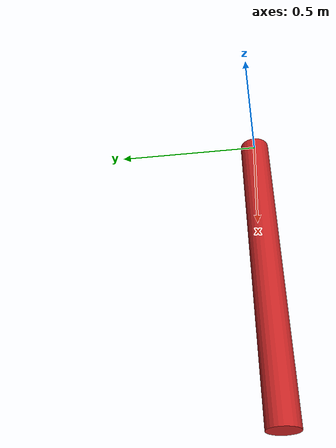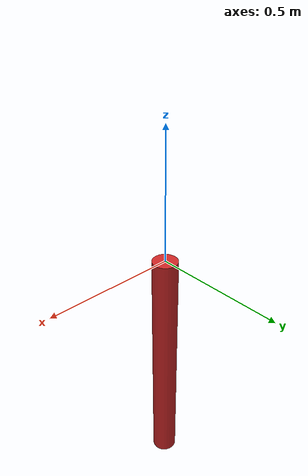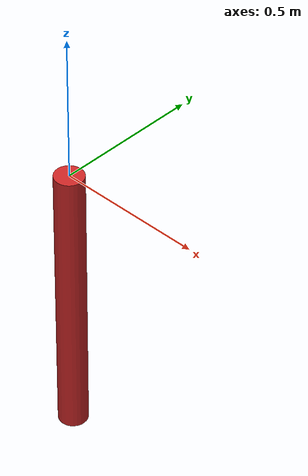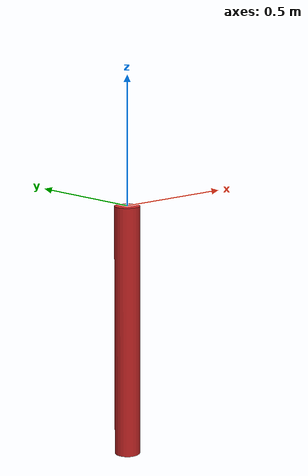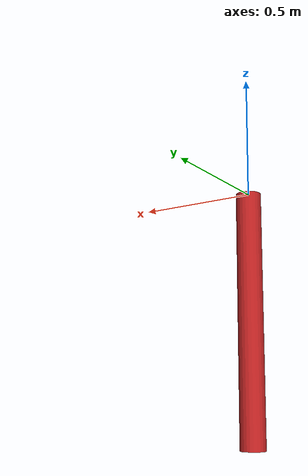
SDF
<?xml version="1.0"?>
<sdf version="1.7">
  <model name="arm">
    <link name="base">
        <inertial>
          <pose>0 0 0 0 0 0</pose>
          <mass>0.01</mass>
          <inertia>
            <ixx>0</ixx>
            <ixy>0</ixy>
            <ixz>0</ixz>
            <iyy>0</iyy>
            <iyz>0</iyz>
            <izz>0</izz>
          </inertia>
        </inertial>
    </link>
    <link name="link1">
        <inertial>
          <pose>0 0 -0.5 0 0 0</pose>
          <mass>0.6</mass>
          <inertia>
            <ixx>0.05</ixx>
            <ixy>0</ixy>
            <ixz>0</ixz>
            <iyy>0.05</iyy>
            <iyz>0</iyz>
            <izz>0.01</izz>
          </inertia>
        </inertial>
        <visual name="link_1_visual">
            <pose>0 0 -0.5 0 0 0</pose>
            <geometry>
                <cylinder>
                  <radius>0.05</radius>
                  <length>1</length>
                </cylinder>
            </geometry>
            <material>
              <diffuse>0.80078125 0.1484375 0.1484375 1.0</diffuse>
            </material>
        </visual>
        <collision name="link_1_collision">
            <pose>0 0 -0.5 0 0 0</pose>
            <geometry>
                <cylinder>
                  <radius>0.05</radius>
                  <length>1</length>
                </cylinder>
            </geometry>
        </collision>
    </link>
    <joint name="joint1" type="revolute">
        <child>link1</child>
        <parent>base</parent>
        <axis>
          <xyz expressed_in="__model__">0 1 0</xyz>
          <limit>
            <lower>-2.96706</lower>
            <upper>2.96706</upper>
            <effort>300</effort>
            <velocity>10</velocity>
          </limit>
          <dynamics>
            <damping>0.01</damping>
            <friction>0</friction>
            <spring_reference>0</spring_reference>
            <spring_stiffness>0</spring_stiffness>
          </dynamics>
        </axis>
        <drake:gear_ratio>160.0</drake:gear_ratio>
        <drake:rotor_inertia>0.00007171875</drake:rotor_inertia>
    </joint>
    <joint name="base_weld" type="fixed">
      <child>base</child>
      <parent>world</parent>
    </joint>
  </model>
</sdf>
